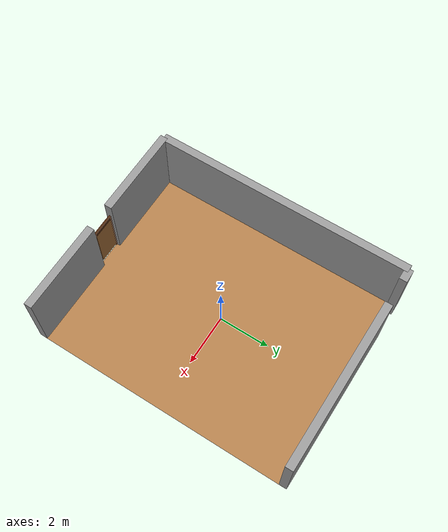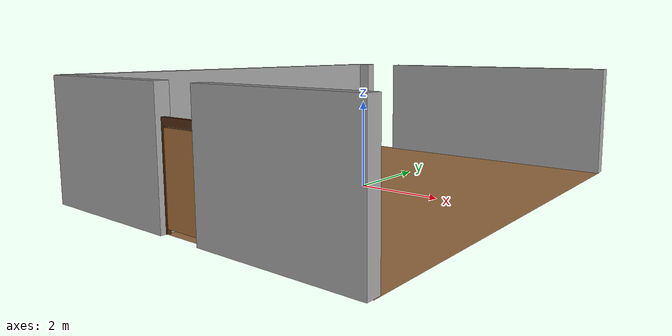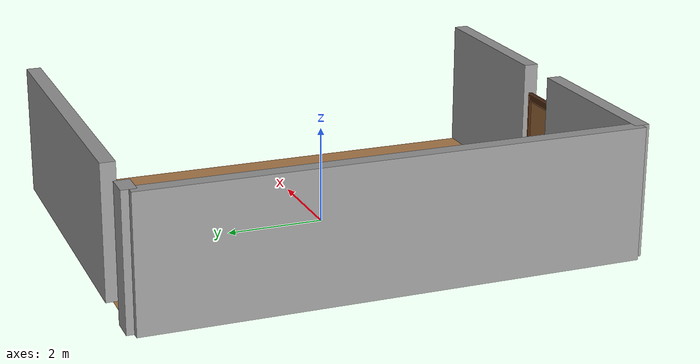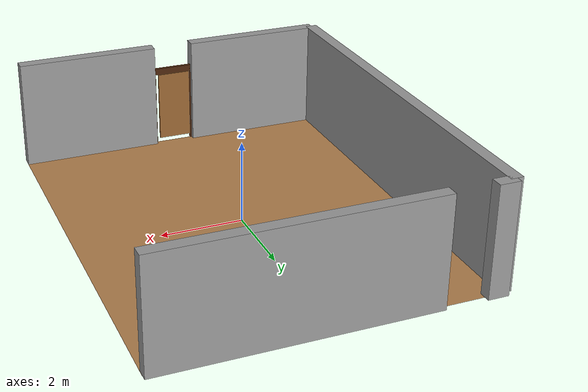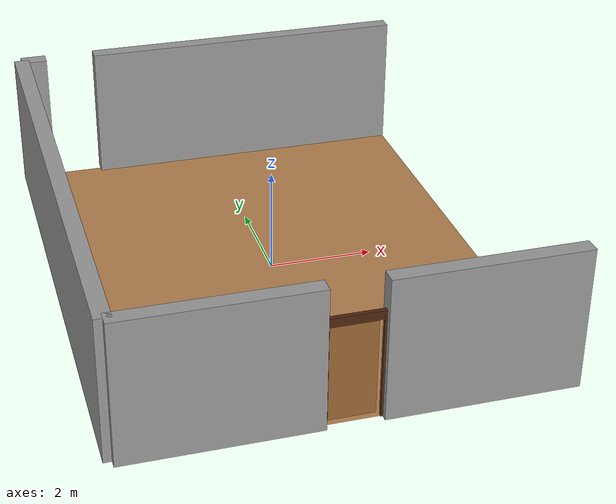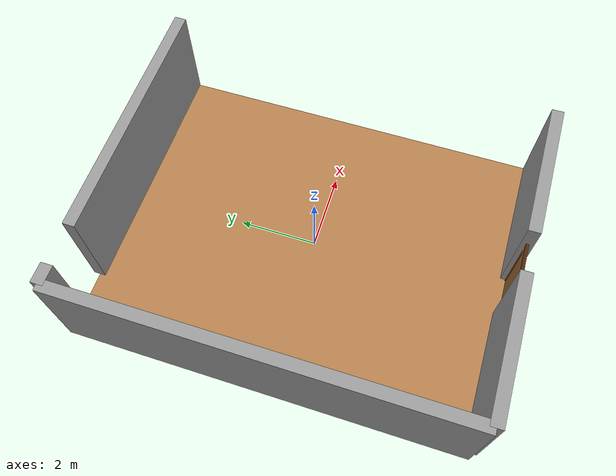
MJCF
<mujoco model="my_apartment">
<visual>
  <headlight diffuse="0.6 0.6 0.6" ambient="0.3 0.3 0.3" specular="0 0 0"/>
  <rgba haze="0.15 0.25 0.35 1"/>
</visual>

<asset>
  <texture name="wood_floor" type="2d" file="../textures/wood_floor.png"/>
  <material name="floor_material" texture="wood_floor" texrepeat="8 8" specular="0.3" shininess="0.2"/>
  <texture name="gray_wall_real" type="2d" file="../textures/gray_wall_real.png"/>
  <material name="wall_material" texture="gray_wall_real" texrepeat="4 4" specular="0.05" shininess="0.01"/>
</asset>

<worldbody>
  <geom name="floor" type="plane" size="4.0 5.0 0.1" pos="0 0 0" material="floor_material" friction="1.0 0.05 0.01"/>
  <geom name="wall_north_left" type="box" size="0.25 0.15 1.35" pos="-3.75 5.0 1.35" material="wall_material"/>
  <geom name="wall_north_right" type="box" size="3.25 0.15 1.35" pos="0.75 5.0 1.35" material="wall_material"/>
  <!-- door opening: 1.0m x 2.0m @ position -3m, interactive: no (just opening) -->
  <geom name="wall_south_left" type="box" size="1.75 0.15 1.35" pos="-2.25 -5.0 1.35" material="wall_material"/>
  <geom name="wall_south_right" type="box" size="1.75 0.15 1.35" pos="2.25 -5.0 1.35" material="wall_material"/>
  <body name="south_door_body" pos="0 -5.0 0">
    <body name="south_door_frame" pos="0 0 1.0">
      <!-- Frame -->
      <geom name="frame_left" type="box" size="0.04 0.04 1.0" pos="-0.5 0 0" rgba="0.3 0.15 0.05 1"/>
      <geom name="frame_right" type="box" size="0.04 0.04 1.0" pos="0.5 0 0" rgba="0.3 0.15 0.05 1"/>
      <geom name="frame_top" type="box" size="0.5 0.04 0.08" pos="0 0 1.0" rgba="0.3 0.15 0.05 1"/>
      <body name="south_door_panel" pos="-0.46 0 0">
        <joint name="south_door_hinge" type="hinge" axis="0 0 1" range="0 1.57" damping="1"/>
        <geom name="door_panel" type="box" size="0.42 0.025 0.9" pos="0.42 0 0" rgba="0.6 0.4 0.2 1"/>
        <body name="south_door_handle" pos="0.7 0 0">
          <geom name="handle" type="sphere" size="0.025" rgba="0.7 0.7 0.7 1"/>
        </body>
      </body>
    </body>
  </body>
  <!-- door opening: 1.0m x 2.0m @ position 0m, interactive: yes (door added) -->
  <!-- window opening: 2m x 1.2m @ position 0m, sill height: 0.9m, interactive: no (just opening) -->
  <geom name="wall_west" type="box" size="0.15 5.0 1.35" pos="-4.0 0 1.35" material="wall_material"/>
</worldbody>
</mujoco>
